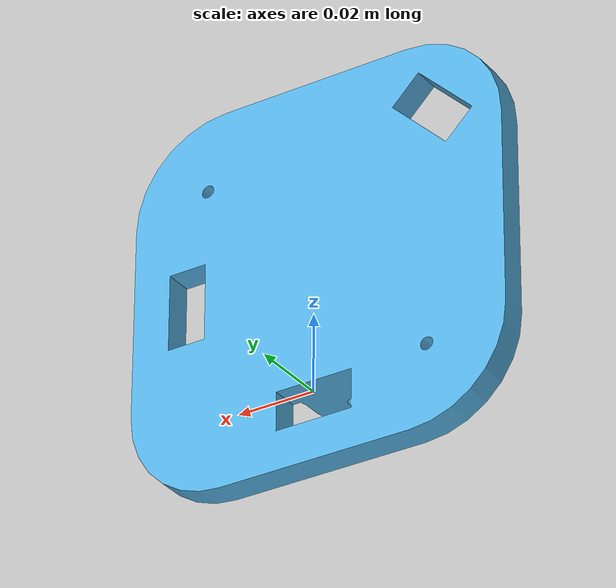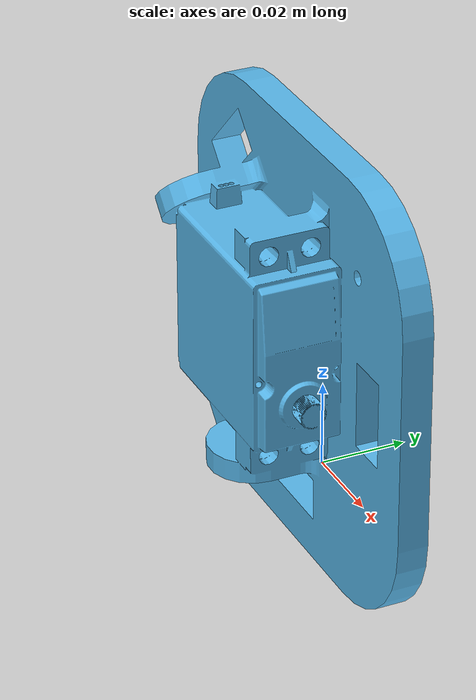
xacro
<?xml version="1.0"?>
<robot xmlns:xacro="http://www.ros.org/wiki/xacro">

    <link name='base_footprint'/>

    <link name='base_link'>
        <visual>
            <origin xyz="0.0 0.0 0.0" rpy="0.0 0.0 0.0"/>
            <geometry>
                <mesh filename="package://robot_model/meshes/base_link.STL"/>
                <material rgba="0.0 0.3 1.0 1.0"/>
            </geometry>
        </visual>
    </link>

    <joint name="base_joint" type="fixed">
        <parent link="base_footprint"/>
        <child link="base_link"/>
        <origin xyz="0.0 0.0 0.033" rpy="0.0 0.0 0.0"/>
    </joint>

</robot>
